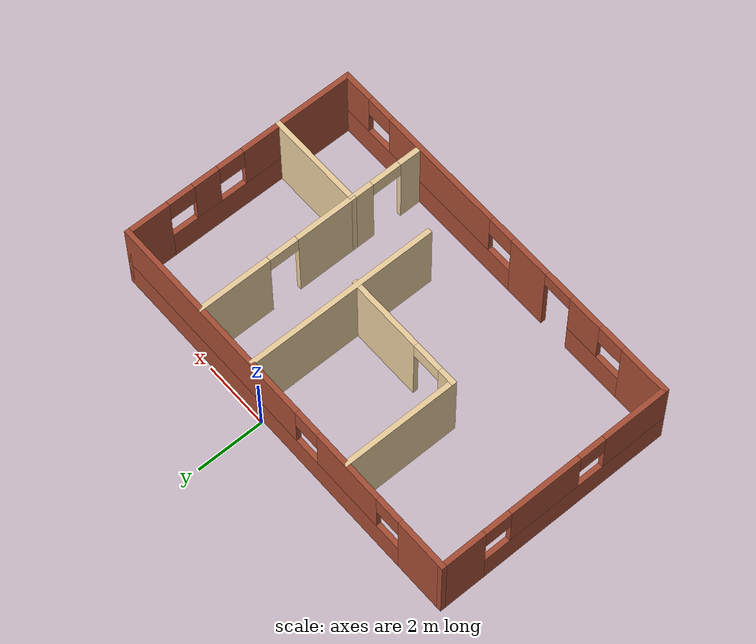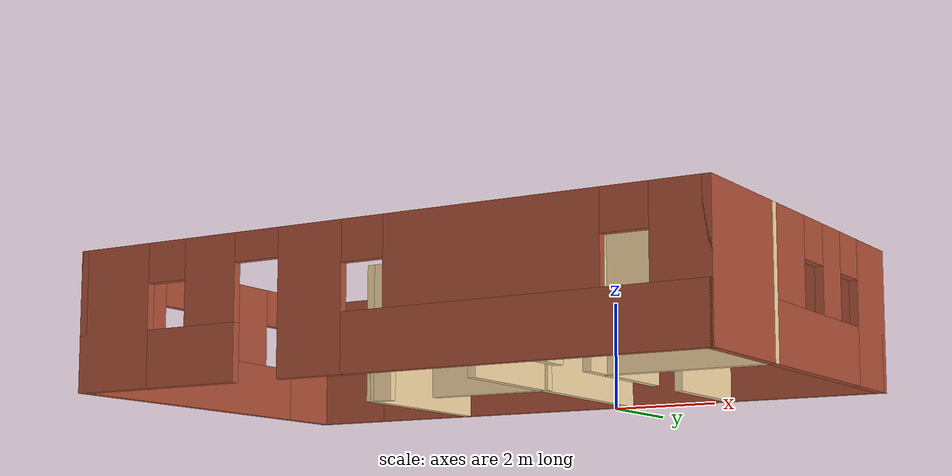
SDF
<?xml version='1.0'?>
<sdf version='1.6'>
  <model name='apartment'>
    <pose>-0.722558 -3.65326 0 0 -0 0</pose>
    <link name='Wall_10'>
      <pose>-5.925 -0.028256 0 0 -0 -1.5708</pose>
      <visual name='Wall_10_Visual_0'>
        <pose>-2.93317 0 1.25 0 -0 0</pose>
        <geometry>
          <box>
            <size>1.38366 0.15 2.5</size>
          </box>
        </geometry>
        <material>
          <script>
            <uri>file://media/materials/scripts/gazebo.material</uri>
            <name>Gazebo/Bricks</name>
          </script>
          <ambient>1 1 1 1</ambient>
        </material>
        <meta>
          <layer>0</layer>
        </meta>
      </visual>
      <collision name='Wall_10_Collision_0'>
        <geometry>
          <box>
            <size>1.38366 0.15 2.5</size>
          </box>
        </geometry>
        <pose>-2.93317 0 1.25 0 -0 0</pose>
      </collision>
      <visual name='Wall_10_Visual_1'>
        <pose>0.691828 0 0.5 0 -0 0</pose>
        <geometry>
          <box>
            <size>5.86634 0.15 1</size>
          </box>
        </geometry>
        <material>
          <script>
            <uri>file://media/materials/scripts/gazebo.material</uri>
            <name>Gazebo/Bricks</name>
          </script>
          <ambient>1 1 1 1</ambient>
        </material>
        <meta>
          <layer>0</layer>
        </meta>
      </visual>
      <collision name='Wall_10_Collision_1'>
        <geometry>
          <box>
            <size>5.86634 0.15 1</size>
          </box>
        </geometry>
        <pose>0.691828 0 0.5 0 -0 0</pose>
      </collision>
      <visual name='Wall_10_Visual_2'>
        <pose>-0.338336 0 1.75 0 -0 0</pose>
        <geometry>
          <box>
            <size>2.20601 0.15 1.5</size>
          </box>
        </geometry>
        <material>
          <script>
            <uri>file://media/materials/scripts/gazebo.material</uri>
            <name>Gazebo/Bricks</name>
          </script>
          <ambient>1 1 1 1</ambient>
        </material>
        <meta>
          <layer>0</layer>
        </meta>
      </visual>
      <collision name='Wall_10_Collision_2'>
        <geometry>
          <box>
            <size>2.20601 0.15 1.5</size>
          </box>
        </geometry>
        <pose>-0.338336 0 1.75 0 -0 0</pose>
      </collision>
      <visual name='Wall_10_Visual_3'>
        <pose>2.59484 0 1.75 0 -0 0</pose>
        <geometry>
          <box>
            <size>2.06033 0.15 1.5</size>
          </box>
        </geometry>
        <material>
          <script>
            <uri>file://media/materials/scripts/gazebo.material</uri>
            <name>Gazebo/Bricks</name>
          </script>
          <ambient>1 1 1 1</ambient>
        </material>
        <meta>
          <layer>0</layer>
        </meta>
      </visual>
      <collision name='Wall_10_Collision_3'>
        <geometry>
          <box>
            <size>2.06033 0.15 1.5</size>
          </box>
        </geometry>
        <pose>2.59484 0 1.75 0 -0 0</pose>
      </collision>
      <visual name='Wall_10_Visual_4'>
        <pose>-1.84134 0 2.15 0 -0 0</pose>
        <geometry>
          <box>
            <size>0.8 0.15 0.7</size>
          </box>
        </geometry>
        <material>
          <script>
            <uri>file://media/materials/scripts/gazebo.material</uri>
            <name>Gazebo/Bricks</name>
          </script>
          <ambient>1 1 1 1</ambient>
        </material>
        <meta>
          <layer>0</layer>
        </meta>
      </visual>
      <collision name='Wall_10_Collision_4'>
        <geometry>
          <box>
            <size>0.8 0.15 0.7</size>
          </box>
        </geometry>
        <pose>-1.84134 0 2.15 0 -0 0</pose>
      </collision>
      <visual name='Wall_10_Visual_5'>
        <pose>1.16467 0 2.15 0 -0 0</pose>
        <geometry>
          <box>
            <size>0.8 0.15 0.7</size>
          </box>
        </geometry>
        <material>
          <script>
            <uri>file://media/materials/scripts/gazebo.material</uri>
            <name>Gazebo/Bricks</name>
          </script>
          <ambient>1 1 1 1</ambient>
        </material>
        <meta>
          <layer>0</layer>
        </meta>
      </visual>
      <collision name='Wall_10_Collision_5'>
        <geometry>
          <box>
            <size>0.8 0.15 0.7</size>
          </box>
        </geometry>
        <pose>1.16467 0 2.15 0 -0 0</pose>
      </collision>
    </link>
    <link name='Wall_11'>
      <pose>-0 -3.57826 0 0 -0 0</pose>
      <visual name='Wall_11_Visual_0'>
        <pose>-5.2325 0 1.25 0 -0 0</pose>
        <geometry>
          <box>
            <size>1.535 0.15 2.5</size>
          </box>
        </geometry>
        <material>
          <script>
            <uri>file://media/materials/scripts/gazebo.material</uri>
            <name>Gazebo/Bricks</name>
          </script>
          <ambient>1 1 1 1</ambient>
        </material>
        <meta>
          <layer>0</layer>
        </meta>
      </visual>
      <collision name='Wall_11_Collision_0'>
        <geometry>
          <box>
            <size>1.535 0.15 2.5</size>
          </box>
        </geometry>
        <pose>-5.2325 0 1.25 0 -0 0</pose>
      </collision>
      <visual name='Wall_11_Visual_1'>
        <pose>-1.07324 0 1.25 0 -0 0</pose>
        <geometry>
          <box>
            <size>1.26192 0.15 2.5</size>
          </box>
        </geometry>
        <material>
          <script>
            <uri>file://media/materials/scripts/gazebo.material</uri>
            <name>Gazebo/Bricks</name>
          </script>
          <ambient>1 1 1 1</ambient>
        </material>
        <meta>
          <layer>0</layer>
        </meta>
      </visual>
      <collision name='Wall_11_Collision_1'>
        <geometry>
          <box>
            <size>1.26192 0.15 2.5</size>
          </box>
        </geometry>
        <pose>-1.07324 0 1.25 0 -0 0</pose>
      </collision>
      <visual name='Wall_11_Visual_2'>
        <pose>-3.5346 0 0.5 0 -0 0</pose>
        <geometry>
          <box>
            <size>1.86079 0.15 1</size>
          </box>
        </geometry>
        <material>
          <script>
            <uri>file://media/materials/scripts/gazebo.material</uri>
            <name>Gazebo/Bricks</name>
          </script>
          <ambient>1 1 1 1</ambient>
        </material>
        <meta>
          <layer>0</layer>
        </meta>
      </visual>
      <collision name='Wall_11_Collision_2'>
        <geometry>
          <box>
            <size>1.86079 0.15 1</size>
          </box>
        </geometry>
        <pose>-3.5346 0 0.5 0 -0 0</pose>
      </collision>
      <visual name='Wall_11_Visual_3'>
        <pose>2.77886 0 0.5 0 -0 0</pose>
        <geometry>
          <box>
            <size>6.44228 0.15 1</size>
          </box>
        </geometry>
        <material>
          <script>
            <uri>file://media/materials/scripts/gazebo.material</uri>
            <name>Gazebo/Bricks</name>
          </script>
          <ambient>1 1 1 1</ambient>
        </material>
        <meta>
          <layer>0</layer>
        </meta>
      </visual>
      <collision name='Wall_11_Collision_3'>
        <geometry>
          <box>
            <size>6.44228 0.15 1</size>
          </box>
        </geometry>
        <pose>2.77886 0 0.5 0 -0 0</pose>
      </collision>
      <visual name='Wall_11_Visual_4'>
        <pose>-3.1346 0 1.75 0 -0 0</pose>
        <geometry>
          <box>
            <size>1.06079 0.15 1.5</size>
          </box>
        </geometry>
        <material>
          <script>
            <uri>file://media/materials/scripts/gazebo.material</uri>
            <name>Gazebo/Bricks</name>
          </script>
          <ambient>1 1 1 1</ambient>
        </material>
        <meta>
          <layer>0</layer>
        </meta>
      </visual>
      <collision name='Wall_11_Collision_4'>
        <geometry>
          <box>
            <size>1.06079 0.15 1.5</size>
          </box>
        </geometry>
        <pose>-3.1346 0 1.75 0 -0 0</pose>
      </collision>
      <visual name='Wall_11_Visual_5'>
        <pose>-3.1346 0 1.75 0 -0 0</pose>
        <geometry>
          <box>
            <size>1.06079 0.15 1.5</size>
          </box>
        </geometry>
        <material>
          <script>
            <uri>file://media/materials/scripts/gazebo.material</uri>
            <name>Gazebo/Bricks</name>
          </script>
          <ambient>1 1 1 1</ambient>
        </material>
        <meta>
          <layer>0</layer>
        </meta>
      </visual>
      <collision name='Wall_11_Collision_5'>
        <geometry>
          <box>
            <size>1.06079 0.15 1.5</size>
          </box>
        </geometry>
        <pose>-3.1346 0 1.75 0 -0 0</pose>
      </collision>
      <visual name='Wall_11_Visual_6'>
        <pose>2.28084 0 1.75 0 -0 0</pose>
        <geometry>
          <box>
            <size>3.84624 0.15 1.5</size>
          </box>
        </geometry>
        <material>
          <script>
            <uri>file://media/materials/scripts/gazebo.material</uri>
            <name>Gazebo/Bricks</name>
          </script>
          <ambient>1 1 1 1</ambient>
        </material>
        <meta>
          <layer>0</layer>
        </meta>
      </visual>
      <collision name='Wall_11_Collision_6'>
        <geometry>
          <box>
            <size>3.84624 0.15 1.5</size>
          </box>
        </geometry>
        <pose>2.28084 0 1.75 0 -0 0</pose>
      </collision>
      <visual name='Wall_11_Visual_7'>
        <pose>5.50198 0 1.75 0 -0 0</pose>
        <geometry>
          <box>
            <size>0.996046 0.15 1.5</size>
          </box>
        </geometry>
        <material>
          <script>
            <uri>file://media/materials/scripts/gazebo.material</uri>
            <name>Gazebo/Bricks</name>
          </script>
          <ambient>1 1 1 1</ambient>
        </material>
        <meta>
          <layer>0</layer>
        </meta>
      </visual>
      <collision name='Wall_11_Collision_7'>
        <geometry>
          <box>
            <size>0.996046 0.15 1.5</size>
          </box>
        </geometry>
        <pose>5.50198 0 1.75 0 -0 0</pose>
      </collision>
      <visual name='Wall_11_Visual_8'>
        <pose>-4.065 0 2.15 0 -0 0</pose>
        <geometry>
          <box>
            <size>0.8 0.15 0.7</size>
          </box>
        </geometry>
        <material>
          <script>
            <uri>file://media/materials/scripts/gazebo.material</uri>
            <name>Gazebo/Bricks</name>
          </script>
          <ambient>1 1 1 1</ambient>
        </material>
        <meta>
          <layer>0</layer>
        </meta>
      </visual>
      <collision name='Wall_11_Collision_8'>
        <geometry>
          <box>
            <size>0.8 0.15 0.7</size>
          </box>
        </geometry>
        <pose>-4.065 0 2.15 0 -0 0</pose>
      </collision>
      <visual name='Wall_11_Visual_9'>
        <pose>-0.042282 0 2.15 0 -0 0</pose>
        <geometry>
          <box>
            <size>0.8 0.15 0.7</size>
          </box>
        </geometry>
        <material>
          <script>
            <uri>file://media/materials/scripts/gazebo.material</uri>
            <name>Gazebo/Bricks</name>
          </script>
          <ambient>1 1 1 1</ambient>
        </material>
        <meta>
          <layer>0</layer>
        </meta>
      </visual>
      <collision name='Wall_11_Collision_9'>
        <geometry>
          <box>
            <size>0.8 0.15 0.7</size>
          </box>
        </geometry>
        <pose>-0.042282 0 2.15 0 -0 0</pose>
      </collision>
      <visual name='Wall_11_Visual_10'>
        <pose>4.60395 0 2.15 0 -0 0</pose>
        <geometry>
          <box>
            <size>0.8 0.15 0.7</size>
          </box>
        </geometry>
        <material>
          <script>
            <uri>file://media/materials/scripts/gazebo.material</uri>
            <name>Gazebo/Bricks</name>
          </script>
          <ambient>1 1 1 1</ambient>
        </material>
        <meta>
          <layer>0</layer>
        </meta>
      </visual>
      <collision name='Wall_11_Collision_10'>
        <geometry>
          <box>
            <size>0.8 0.15 0.7</size>
          </box>
        </geometry>
        <pose>4.60395 0 2.15 0 -0 0</pose>
      </collision>
      <visual name='Wall_11_Visual_11'>
        <pose>-2.15421 0 2.25 0 -0 0</pose>
        <geometry>
          <box>
            <size>0.9 0.15 0.5</size>
          </box>
        </geometry>
        <material>
          <script>
            <uri>file://media/materials/scripts/gazebo.material</uri>
            <name>Gazebo/Bricks</name>
          </script>
          <ambient>1 1 1 1</ambient>
        </material>
        <meta>
          <layer>0</layer>
        </meta>
      </visual>
      <collision name='Wall_11_Collision_11'>
        <geometry>
          <box>
            <size>0.9 0.15 0.5</size>
          </box>
        </geometry>
        <pose>-2.15421 0 2.25 0 -0 0</pose>
      </collision>
      <visual name='Wall_11_Visual_12'>
        <pose>-2.15421 0 2.25 0 -0 0</pose>
        <geometry>
          <box>
            <size>0.9 0.15 0.5</size>
          </box>
        </geometry>
        <material>
          <script>
            <uri>file://media/materials/scripts/gazebo.material</uri>
            <name>Gazebo/Bricks</name>
          </script>
          <ambient>1 1 1 1</ambient>
        </material>
        <meta>
          <layer>0</layer>
        </meta>
      </visual>
      <collision name='Wall_11_Collision_12'>
        <geometry>
          <box>
            <size>0.9 0.15 0.5</size>
          </box>
        </geometry>
        <pose>-2.15421 0 2.25 0 -0 0</pose>
      </collision>
    </link>
    <link name='Wall_12'>
      <collision name='Wall_12_Collision'>
        <geometry>
          <box>
            <size>2.4 0.15 2.5</size>
          </box>
        </geometry>
        <pose>0 0 1.25 0 -0 0</pose>
      </collision>
      <visual name='Wall_12_Visual'>
        <pose>0 0 1.25 0 -0 0</pose>
        <geometry>
          <box>
            <size>2.4 0.15 2.5</size>
          </box>
        </geometry>
        <material>
          <script>
            <uri>file://media/materials/scripts/gazebo.material</uri>
            <name>Gazebo/Bricks</name>
          </script>
          <ambient>1 1 1 1</ambient>
        </material>
        <meta>
          <layer>0</layer>
        </meta>
      </visual>
      <pose>5.925 -2.45326 0 0 -0 1.5708</pose>
    </link>
    <link name='Wall_14'>
      <collision name='Wall_14_Collision'>
        <geometry>
          <box>
            <size>5.75 0.15 2.5</size>
          </box>
        </geometry>
        <pose>0 0 1.25 0 -0 0</pose>
      </collision>
      <visual name='Wall_14_Visual'>
        <pose>0 0 1.25 0 -0 0</pose>
        <geometry>
          <box>
            <size>5.75 0.15 2.5</size>
          </box>
        </geometry>
        <material>
          <script>
            <uri>file://media/materials/scripts/gazebo.material</uri>
            <name>Gazebo/Grey</name>
          </script>
          <ambient>0.921569 0.807843 0.615686 1</ambient>
        </material>
        <meta>
          <layer>0</layer>
        </meta>
      </visual>
      <pose>1.10155 0.680987 0 0 -0 -1.5708</pose>
    </link>
    <link name='Wall_21'>
      <collision name='Wall_21_Collision'>
        <geometry>
          <box>
            <size>3.5 0.15 2.5</size>
          </box>
        </geometry>
        <pose>0 0 1.25 0 -0 0</pose>
      </collision>
      <visual name='Wall_21_Visual'>
        <pose>0 0 1.25 0 -0 0</pose>
        <geometry>
          <box>
            <size>3.5 0.15 2.5</size>
          </box>
        </geometry>
        <material>
          <script>
            <uri>file://media/materials/scripts/gazebo.material</uri>
            <name>Gazebo/Grey</name>
          </script>
          <ambient>0.921569 0.807843 0.615686 1</ambient>
        </material>
        <meta>
          <layer>0</layer>
        </meta>
      </visual>
      <pose>-2.44698 1.84407 0 0 -0 -1.5708</pose>
    </link>
    <link name='Wall_22'>
      <pose>-0.646975 0.169069 0 0 -0 0</pose>
      <visual name='Wall_22_Visual_0'>
        <pose>-1.61441 0 1.25 0 -0 0</pose>
        <geometry>
          <box>
            <size>0.521175 0.15 2.5</size>
          </box>
        </geometry>
        <material>
          <script>
            <uri>file://media/materials/scripts/gazebo.material</uri>
            <name>Gazebo/Grey</name>
          </script>
          <ambient>0.921569 0.807843 0.615686 1</ambient>
        </material>
        <meta>
          <layer>0</layer>
        </meta>
      </visual>
      <collision name='Wall_22_Collision_0'>
        <geometry>
          <box>
            <size>0.521175 0.15 2.5</size>
          </box>
        </geometry>
        <pose>-1.61441 0 1.25 0 -0 0</pose>
      </collision>
      <visual name='Wall_22_Visual_1'>
        <pose>0.710588 0 1.25 0 -0 0</pose>
        <geometry>
          <box>
            <size>2.32883 0.15 2.5</size>
          </box>
        </geometry>
        <material>
          <script>
            <uri>file://media/materials/scripts/gazebo.material</uri>
            <name>Gazebo/Grey</name>
          </script>
          <ambient>0.921569 0.807843 0.615686 1</ambient>
        </material>
        <meta>
          <layer>0</layer>
        </meta>
      </visual>
      <collision name='Wall_22_Collision_1'>
        <geometry>
          <box>
            <size>2.32883 0.15 2.5</size>
          </box>
        </geometry>
        <pose>0.710588 0 1.25 0 -0 0</pose>
      </collision>
      <visual name='Wall_22_Visual_2'>
        <pose>-0.903825 0 2.25 0 -0 0</pose>
        <geometry>
          <box>
            <size>0.9 0.15 0.5</size>
          </box>
        </geometry>
        <material>
          <script>
            <uri>file://media/materials/scripts/gazebo.material</uri>
            <name>Gazebo/Grey</name>
          </script>
          <ambient>0.921569 0.807843 0.615686 1</ambient>
        </material>
        <meta>
          <layer>0</layer>
        </meta>
      </visual>
      <collision name='Wall_22_Collision_2'>
        <geometry>
          <box>
            <size>0.9 0.15 0.5</size>
          </box>
        </geometry>
        <pose>-0.903825 0 2.25 0 -0 0</pose>
      </collision>
    </link>
    <link name='Wall_24'>
      <pose>3.075 -2.37826 0 0 -0 -1.5708</pose>
      <visual name='Wall_24_Visual_0'>
        <pose>-0.771247 0 1.25 0 -0 0</pose>
        <geometry>
          <box>
            <size>0.707506 0.15 2.5</size>
          </box>
        </geometry>
        <material>
          <script>
            <uri>file://media/materials/scripts/gazebo.material</uri>
            <name>Gazebo/Grey</name>
          </script>
          <ambient>0.921569 0.807843 0.615686 1</ambient>
        </material>
        <meta>
          <layer>0</layer>
        </meta>
      </visual>
      <collision name='Wall_24_Collision_0'>
        <geometry>
          <box>
            <size>0.707506 0.15 2.5</size>
          </box>
        </geometry>
        <pose>-0.771247 0 1.25 0 -0 0</pose>
      </collision>
      <visual name='Wall_24_Visual_1'>
        <pose>0.803753 0 1.25 0 -0 0</pose>
        <geometry>
          <box>
            <size>0.642494 0.15 2.5</size>
          </box>
        </geometry>
        <material>
          <script>
            <uri>file://media/materials/scripts/gazebo.material</uri>
            <name>Gazebo/Grey</name>
          </script>
          <ambient>0.921569 0.807843 0.615686 1</ambient>
        </material>
        <meta>
          <layer>0</layer>
        </meta>
      </visual>
      <collision name='Wall_24_Collision_1'>
        <geometry>
          <box>
            <size>0.642494 0.15 2.5</size>
          </box>
        </geometry>
        <pose>0.803753 0 1.25 0 -0 0</pose>
      </collision>
      <visual name='Wall_24_Visual_2'>
        <pose>0.032506 0 2.25 0 -0 0</pose>
        <geometry>
          <box>
            <size>0.9 0.15 0.5</size>
          </box>
        </geometry>
        <material>
          <script>
            <uri>file://media/materials/scripts/gazebo.material</uri>
            <name>Gazebo/Grey</name>
          </script>
          <ambient>0.921569 0.807843 0.615686 1</ambient>
        </material>
        <meta>
          <layer>0</layer>
        </meta>
      </visual>
      <collision name='Wall_24_Collision_2'>
        <geometry>
          <box>
            <size>0.9 0.15 0.5</size>
          </box>
        </geometry>
        <pose>0.032506 0 2.25 0 -0 0</pose>
      </collision>
    </link>
    <link name='Wall_5'>
      <pose>-0 3.52174 0 0 -0 0</pose>
      <visual name='Wall_5_Visual_0'>
        <pose>-5.21398 0 1.25 0 -0 0</pose>
        <geometry>
          <box>
            <size>1.57204 0.15 2.5</size>
          </box>
        </geometry>
        <material>
          <script>
            <uri>file://media/materials/scripts/gazebo.material</uri>
            <name>Gazebo/Bricks</name>
          </script>
          <ambient>1 1 1 1</ambient>
        </material>
        <meta>
          <layer>0</layer>
        </meta>
      </visual>
      <collision name='Wall_5_Collision_0'>
        <geometry>
          <box>
            <size>1.57204 0.15 2.5</size>
          </box>
        </geometry>
        <pose>-5.21398 0 1.25 0 -0 0</pose>
      </collision>
      <visual name='Wall_5_Visual_1'>
        <pose>0.78602 0 0.5 0 -0 0</pose>
        <geometry>
          <box>
            <size>10.428 0.15 1</size>
          </box>
        </geometry>
        <material>
          <script>
            <uri>file://media/materials/scripts/gazebo.material</uri>
            <name>Gazebo/Bricks</name>
          </script>
          <ambient>1 1 1 1</ambient>
        </material>
        <meta>
          <layer>0</layer>
        </meta>
      </visual>
      <collision name='Wall_5_Collision_1'>
        <geometry>
          <box>
            <size>10.428 0.15 1</size>
          </box>
        </geometry>
        <pose>0.78602 0 0.5 0 -0 0</pose>
      </collision>
      <visual name='Wall_5_Visual_2'>
        <pose>-2.5279 0 1.75 0 -0 0</pose>
        <geometry>
          <box>
            <size>2.20011 0.15 1.5</size>
          </box>
        </geometry>
        <material>
          <script>
            <uri>file://media/materials/scripts/gazebo.material</uri>
            <name>Gazebo/Bricks</name>
          </script>
          <ambient>1 1 1 1</ambient>
        </material>
        <meta>
          <layer>0</layer>
        </meta>
      </visual>
      <collision name='Wall_5_Collision_2'>
        <geometry>
          <box>
            <size>2.20011 0.15 1.5</size>
          </box>
        </geometry>
        <pose>-2.5279 0 1.75 0 -0 0</pose>
      </collision>
      <visual name='Wall_5_Visual_3'>
        <pose>2.68608 0 1.75 0 -0 0</pose>
        <geometry>
          <box>
            <size>6.62785 0.15 1.5</size>
          </box>
        </geometry>
        <material>
          <script>
            <uri>file://media/materials/scripts/gazebo.material</uri>
            <name>Gazebo/Bricks</name>
          </script>
          <ambient>1 1 1 1</ambient>
        </material>
        <meta>
          <layer>0</layer>
        </meta>
      </visual>
      <collision name='Wall_5_Collision_3'>
        <geometry>
          <box>
            <size>6.62785 0.15 1.5</size>
          </box>
        </geometry>
        <pose>2.68608 0 1.75 0 -0 0</pose>
      </collision>
      <visual name='Wall_5_Visual_4'>
        <pose>-4.02796 0 2.15 0 -0 0</pose>
        <geometry>
          <box>
            <size>0.8 0.15 0.7</size>
          </box>
        </geometry>
        <material>
          <script>
            <uri>file://media/materials/scripts/gazebo.material</uri>
            <name>Gazebo/Bricks</name>
          </script>
          <ambient>1 1 1 1</ambient>
        </material>
        <meta>
          <layer>0</layer>
        </meta>
      </visual>
      <collision name='Wall_5_Collision_4'>
        <geometry>
          <box>
            <size>0.8 0.15 0.7</size>
          </box>
        </geometry>
        <pose>-4.02796 0 2.15 0 -0 0</pose>
      </collision>
      <visual name='Wall_5_Visual_5'>
        <pose>-1.02785 0 2.15 0 -0 0</pose>
        <geometry>
          <box>
            <size>0.8 0.15 0.7</size>
          </box>
        </geometry>
        <material>
          <script>
            <uri>file://media/materials/scripts/gazebo.material</uri>
            <name>Gazebo/Bricks</name>
          </script>
          <ambient>1 1 1 1</ambient>
        </material>
        <meta>
          <layer>0</layer>
        </meta>
      </visual>
      <collision name='Wall_5_Collision_5'>
        <geometry>
          <box>
            <size>0.8 0.15 0.7</size>
          </box>
        </geometry>
        <pose>-1.02785 0 2.15 0 -0 0</pose>
      </collision>
    </link>
    <link name='Wall_6'>
      <pose>5.925 1.09674 0 0 -0 -1.5708</pose>
      <visual name='Wall_6_Visual_0'>
        <pose>-1.83834 0 1.25 0 -0 0</pose>
        <geometry>
          <box>
            <size>1.32332 0.15 2.5</size>
          </box>
        </geometry>
        <material>
          <script>
            <uri>file://media/materials/scripts/gazebo.material</uri>
            <name>Gazebo/Bricks</name>
          </script>
          <ambient>1 1 1 1</ambient>
        </material>
        <meta>
          <layer>0</layer>
        </meta>
      </visual>
      <collision name='Wall_6_Collision_0'>
        <geometry>
          <box>
            <size>1.32332 0.15 2.5</size>
          </box>
        </geometry>
        <pose>-1.83834 0 1.25 0 -0 0</pose>
      </collision>
      <visual name='Wall_6_Visual_1'>
        <pose>0.661658 0 0.5 0 -0 0</pose>
        <geometry>
          <box>
            <size>3.67668 0.15 1</size>
          </box>
        </geometry>
        <material>
          <script>
            <uri>file://media/materials/scripts/gazebo.material</uri>
            <name>Gazebo/Bricks</name>
          </script>
          <ambient>1 1 1 1</ambient>
        </material>
        <meta>
          <layer>0</layer>
        </meta>
      </visual>
      <collision name='Wall_6_Collision_1'>
        <geometry>
          <box>
            <size>3.67668 0.15 1</size>
          </box>
        </geometry>
        <pose>0.661658 0 0.5 0 -0 0</pose>
      </collision>
      <visual name='Wall_6_Visual_2'>
        <pose>0.017802 0 1.75 0 -0 0</pose>
        <geometry>
          <box>
            <size>0.788972 0.15 1.5</size>
          </box>
        </geometry>
        <material>
          <script>
            <uri>file://media/materials/scripts/gazebo.material</uri>
            <name>Gazebo/Bricks</name>
          </script>
          <ambient>1 1 1 1</ambient>
        </material>
        <meta>
          <layer>0</layer>
        </meta>
      </visual>
      <collision name='Wall_6_Collision_2'>
        <geometry>
          <box>
            <size>0.788972 0.15 1.5</size>
          </box>
        </geometry>
        <pose>0.017802 0 1.75 0 -0 0</pose>
      </collision>
      <visual name='Wall_6_Visual_3'>
        <pose>1.85614 0 1.75 0 -0 0</pose>
        <geometry>
          <box>
            <size>1.28771 0.15 1.5</size>
          </box>
        </geometry>
        <material>
          <script>
            <uri>file://media/materials/scripts/gazebo.material</uri>
            <name>Gazebo/Bricks</name>
          </script>
          <ambient>1 1 1 1</ambient>
        </material>
        <meta>
          <layer>0</layer>
        </meta>
      </visual>
      <collision name='Wall_6_Collision_3'>
        <geometry>
          <box>
            <size>1.28771 0.15 1.5</size>
          </box>
        </geometry>
        <pose>1.85614 0 1.75 0 -0 0</pose>
      </collision>
      <visual name='Wall_6_Visual_4'>
        <pose>-0.776684 0 2.15 0 -0 0</pose>
        <geometry>
          <box>
            <size>0.8 0.15 0.7</size>
          </box>
        </geometry>
        <material>
          <script>
            <uri>file://media/materials/scripts/gazebo.material</uri>
            <name>Gazebo/Bricks</name>
          </script>
          <ambient>1 1 1 1</ambient>
        </material>
        <meta>
          <layer>0</layer>
        </meta>
      </visual>
      <collision name='Wall_6_Collision_4'>
        <geometry>
          <box>
            <size>0.8 0.15 0.7</size>
          </box>
        </geometry>
        <pose>-0.776684 0 2.15 0 -0 0</pose>
      </collision>
      <visual name='Wall_6_Visual_5'>
        <pose>0.812288 0 2.15 0 -0 0</pose>
        <geometry>
          <box>
            <size>0.8 0.15 0.7</size>
          </box>
        </geometry>
        <material>
          <script>
            <uri>file://media/materials/scripts/gazebo.material</uri>
            <name>Gazebo/Bricks</name>
          </script>
          <ambient>1 1 1 1</ambient>
        </material>
        <meta>
          <layer>0</layer>
        </meta>
      </visual>
      <collision name='Wall_6_Collision_5'>
        <geometry>
          <box>
            <size>0.8 0.15 0.7</size>
          </box>
        </geometry>
        <pose>0.812288 0 2.15 0 -0 0</pose>
      </collision>
    </link>
    <link name='Wall_7'>
      <collision name='Wall_7_Collision'>
        <geometry>
          <box>
            <size>3 0.15 2.5</size>
          </box>
        </geometry>
        <pose>0 0 1.25 0 -0 0</pose>
      </collision>
      <visual name='Wall_7_Visual'>
        <pose>0 0 1.25 0 -0 0</pose>
        <geometry>
          <box>
            <size>3 0.15 2.5</size>
          </box>
        </geometry>
        <material>
          <script>
            <uri>file://media/materials/scripts/gazebo.material</uri>
            <name>Gazebo/Grey</name>
          </script>
          <ambient>0.921569 0.807843 0.615686 1</ambient>
        </material>
        <meta>
          <layer>0</layer>
        </meta>
      </visual>
      <pose>4.5 -1.32826 0 0 -0 3.14159</pose>
    </link>
    <link name='Wall_8'>
      <pose>3.075 1.09674 0 0 -0 1.5708</pose>
      <visual name='Wall_8_Visual_0'>
        <pose>-1.55933 0 1.25 0 -0 0</pose>
        <geometry>
          <box>
            <size>1.88135 0.15 2.5</size>
          </box>
        </geometry>
        <material>
          <script>
            <uri>file://media/materials/scripts/gazebo.material</uri>
            <name>Gazebo/Grey</name>
          </script>
          <ambient>0.921569 0.807843 0.615686 1</ambient>
        </material>
        <meta>
          <layer>0</layer>
        </meta>
      </visual>
      <collision name='Wall_8_Collision_0'>
        <geometry>
          <box>
            <size>1.88135 0.15 2.5</size>
          </box>
        </geometry>
        <pose>-1.55933 0 1.25 0 -0 0</pose>
      </collision>
      <visual name='Wall_8_Visual_1'>
        <pose>1.39067 0 1.25 0 -0 0</pose>
        <geometry>
          <box>
            <size>2.21865 0.15 2.5</size>
          </box>
        </geometry>
        <material>
          <script>
            <uri>file://media/materials/scripts/gazebo.material</uri>
            <name>Gazebo/Grey</name>
          </script>
          <ambient>0.921569 0.807843 0.615686 1</ambient>
        </material>
        <meta>
          <layer>0</layer>
        </meta>
      </visual>
      <collision name='Wall_8_Collision_1'>
        <geometry>
          <box>
            <size>2.21865 0.15 2.5</size>
          </box>
        </geometry>
        <pose>1.39067 0 1.25 0 -0 0</pose>
      </collision>
      <visual name='Wall_8_Visual_2'>
        <pose>-0.168653 0 2.25 0 -0 0</pose>
        <geometry>
          <box>
            <size>0.9 0.15 0.5</size>
          </box>
        </geometry>
        <material>
          <script>
            <uri>file://media/materials/scripts/gazebo.material</uri>
            <name>Gazebo/Grey</name>
          </script>
          <ambient>0.921569 0.807843 0.615686 1</ambient>
        </material>
        <meta>
          <layer>0</layer>
        </meta>
      </visual>
      <collision name='Wall_8_Collision_2'>
        <geometry>
          <box>
            <size>0.9 0.15 0.5</size>
          </box>
        </geometry>
        <pose>-0.168653 0 2.25 0 -0 0</pose>
      </collision>
    </link>
    <static>1</static>
  </model>
</sdf>
